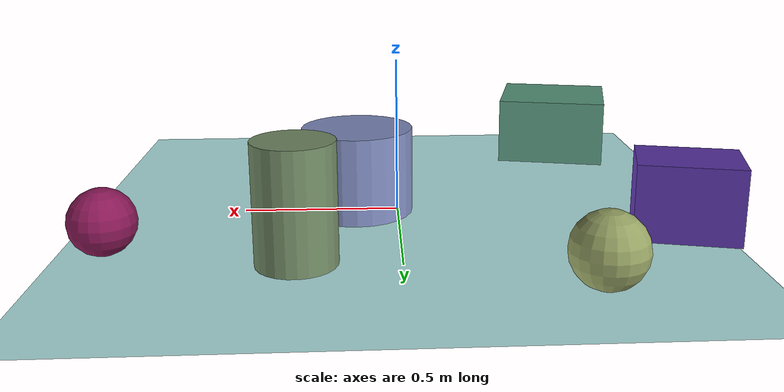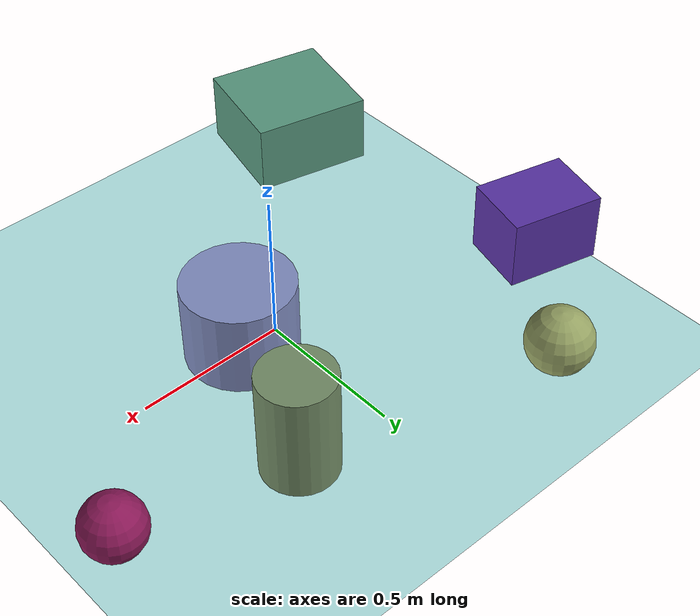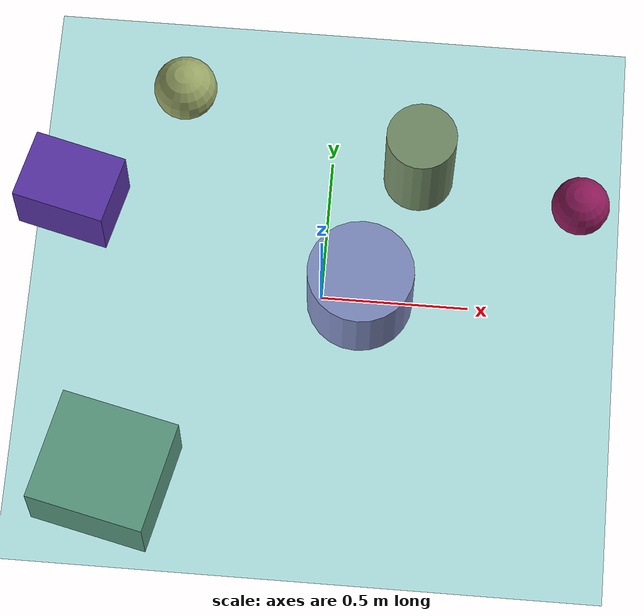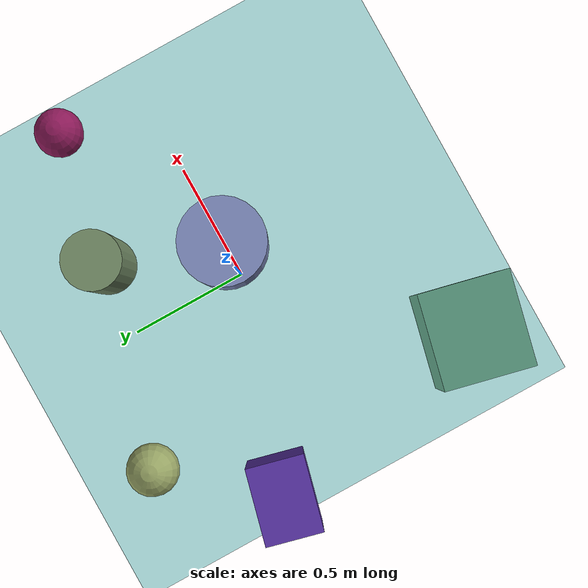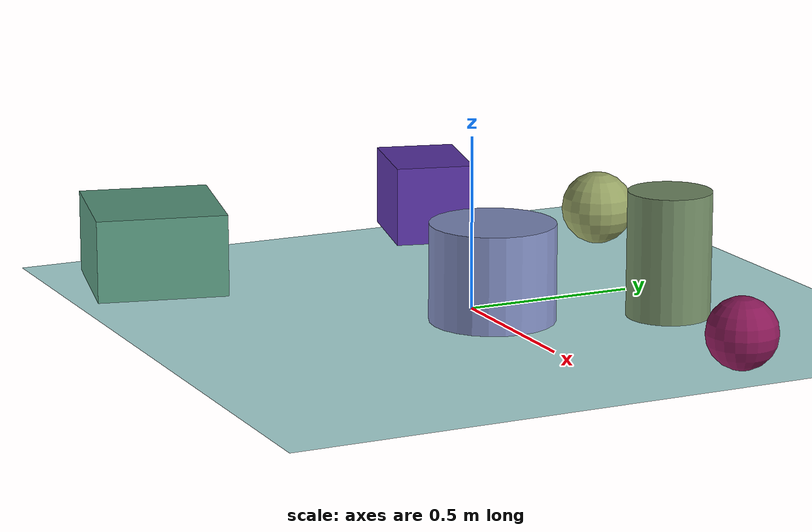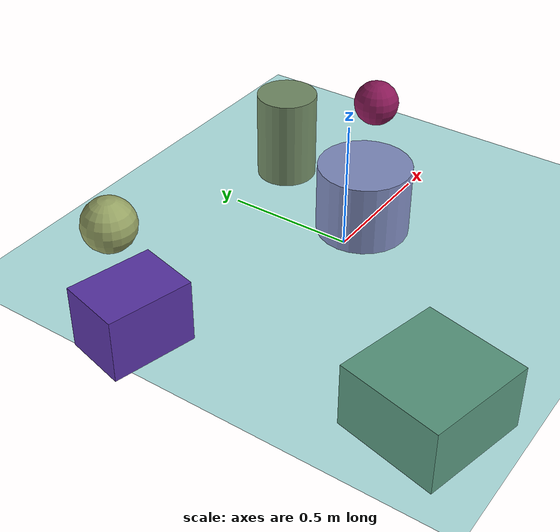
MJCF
<mujoco>
   <asset>
<texture type="skybox" builtin="gradient" rgb1="0.5 0.6 0.7" rgb2="0.0 0.8 1.0" width="256" height="256"/>
<texture name="checker_0" builtin="checker" rgb1="0.6 0.1 0.5" rgb2="0.1 0.3 0.8" width="200" height="200"/>
<texture name="checker_1" builtin="checker" rgb1="0.7 0.2 0.4" rgb2="0.2 0.9 0.4" width="200" height="200"/>
<texture name="gradient_2" builtin="gradient" rgb1="0.6 0.7 0.2" rgb2="0.6 0.6 0.6" width="200" height="200"/>
<texture name="checker_3" builtin="checker" rgb1="0.9 0.1 0.4" rgb2="0.2 0.1 0.3" width="200" height="200"/>
<texture name="gradient_4" builtin="gradient" rgb1="0.6 0.5 0.5" rgb2="0.4 0.6 1.0" width="200" height="200"/>
<texture name="checker_5" builtin="checker" rgb1="0.2 0.3 0.2" rgb2="0.5 0.9 0.8" width="200" height="200"/><material name="checker_0_mat" reflectance="0" texrepeat="5 5" texture="checker_0" texuniform="false" />
<material name="checker_1_mat" reflectance="0" texrepeat="5 5" texture="checker_1" texuniform="false" />
<material name="gradient_2_mat" reflectance="0" texture="gradient_2" texuniform="true"/>
<material name="checker_3_mat" reflectance="0" texrepeat="9 9" texture="checker_3" texuniform="false" />
<material name="gradient_4_mat" reflectance="0" texture="gradient_4" texuniform="true"/>
<material name="checker_5_mat" reflectance="0" texrepeat="4 4" texture="checker_5" texuniform="false" />
   </asset>

   <worldbody>
      <light diffuse=".9 .9 .9" pos="0 0 3" dir="0 0 -1"/>
     <geom type="plane" size="1 1 0.1" rgba="0.7 0.9 0.9 1"/>
<geom type="box" pos="-0.88 0.28 0.12" size="0.12 0.16 0.12" material="checker_0_mat" euler="0 0 76" />
<geom type="cylinder" pos="0.3 0.47 0.18" size="0.12 0.18 0.18" material="checker_1_mat" euler="0 0 5" />
<geom type="sphere" pos="-0.53 0.7 0.11" size="0.11 0.11 0.11" material="gradient_2_mat" euler="0 0 13" />
<geom type="sphere" pos="0.86 0.37 0.1" size="0.1 0.1 0.1" material="checker_3_mat" euler="0 0 30" />
<geom type="cylinder" pos="0.13 -0.0 0.14" size="0.18 0.14 0.14" material="gradient_4_mat" euler="0 0 15" />
<geom type="box" pos="-0.66 -0.71 0.12" size="0.19 0.2 0.12" material="checker_5_mat" euler="0 0 77" /><camera euler="60 0 180" fovy="60" name="camera1" pos="-0.2 -1.5 1"></camera>   </worldbody>
</mujoco>
